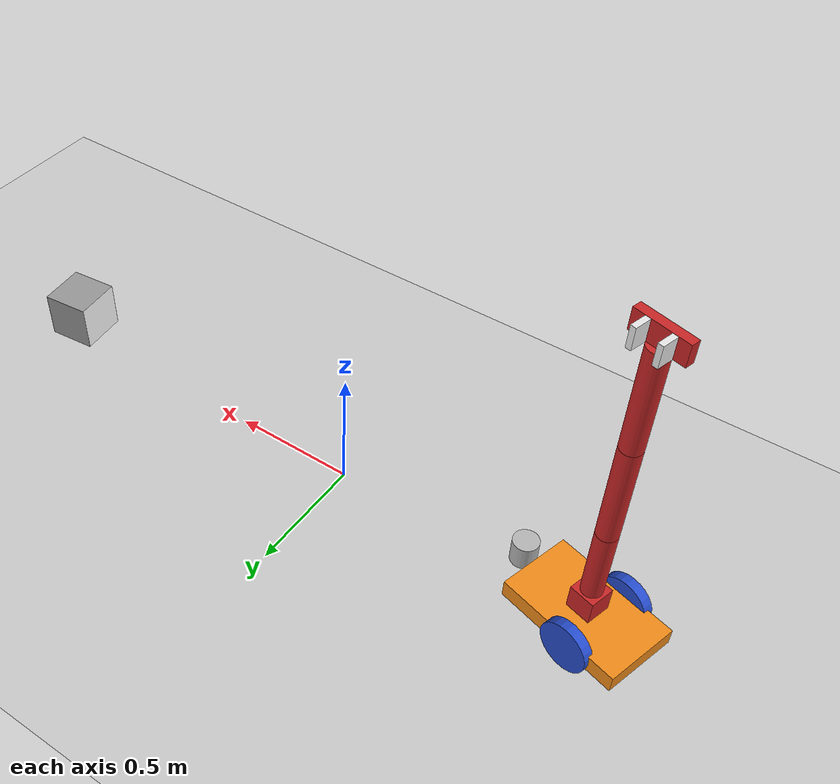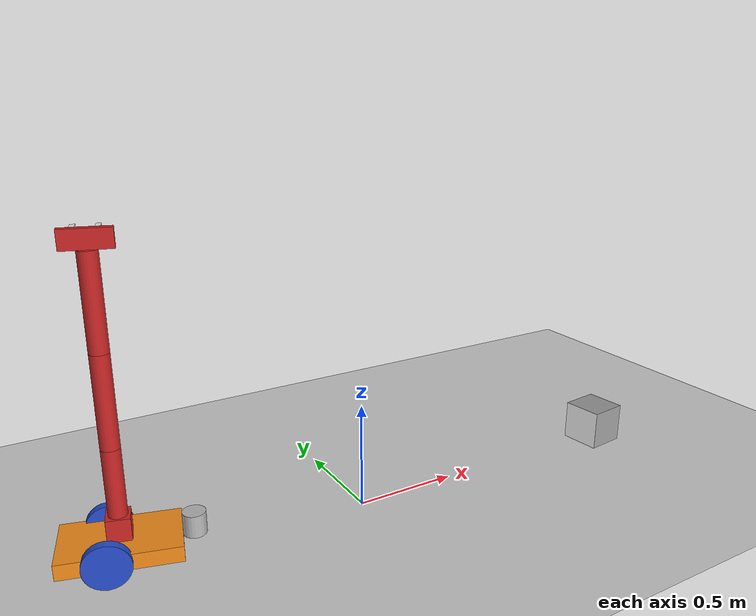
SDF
<sdf version="1.7">
 <world name="default">
  <model name="ground_plane">
   <static>1</static>
   <link name="link">
    <collision name="collision">
     <geometry><plane><normal>0 0 1</normal><size>100 100</size></plane></geometry>
     <surface>
      <contact><collide_bitmask>65535</collide_bitmask></contact>
      <friction><ode><mu>100</mu><mu2>50</mu2></ode></friction>
     </surface>
    </collision>
    <visual name="visual">
     <cast_shadows>0</cast_shadows>
     <geometry><plane><normal>0 0 1</normal><size>100 100</size></plane></geometry>
     <material>
      <script><uri>file://media/materials/scripts/gazebo.material</uri><name>Gazebo/Grey</name></script>
     </material>
    </visual>
   </link>
  </model>
  <model name="robot">
   <link name="base_link">
    <inertial>
     <pose>0.049181 0 0.091561 0 -0 0</pose>
     <mass>6.10001</mass>
     <inertia>
      <ixx>0.0431668</ixx>
      <ixy>0</ixy>
      <ixz>0.0124628</ixz>
      <iyy>0.18508</iyy>
      <iyz>0</iyz>
      <izz>0.182747</izz>
     </inertia>
    </inertial>
    <collision name="base_link_fixed_joint_lump__collision_chassis_collision">
     <geometry><box><size>0.5 0.3 0.07</size></box></geometry>
    </collision>
    <collision name="base_link_fixed_joint_lump__caster_front_collision_collision_1">
     <pose>0.35 0 -0.05 0 -0 0</pose>
     <geometry><sphere><radius>0.05</radius></sphere></geometry>
    </collision>
    <collision name="base_link_fixed_joint_lump__arm_base_link_collision_2">
     <pose>0 0 0.085 0 -0 0</pose>
     <geometry><box><size>0.1 0.1 0.1</size></box></geometry>
    </collision>
    <collision name="base_link_fixed_joint_lump__camera_link_collision_3">
     <pose>0.28 0 3 0 -0 0</pose>
     <geometry><box><size>0.0001 0.0001 1e-05</size></box></geometry>
    </collision>
    <collision name="base_link_fixed_joint_lump__laser_collision_4">
     <pose>0.3 0 0.05 0 -0 0</pose>
     <geometry><cylinder><length>0.1</length><radius>0.05</radius></cylinder></geometry>
    </collision>
    <visual name="base_link_visual">
     <geometry><box><size>0.5 0.3 0.07</size></box></geometry>
     <material>
      <script><name>Gazebo/Orange</name><uri>file://media/materials/scripts/gazebo.material</uri></script>
     </material>
    </visual>
    <visual name="base_link_fixed_joint_lump__caster_front_visual_visual_1">
     <pose>0.2 0 -0.05 0 -0 0</pose>
     <geometry><sphere><radius>0.05</radius></sphere></geometry>
    </visual>
    <visual name="base_link_fixed_joint_lump__arm_base_link_visual_2">
     <pose>0 0 0.085 0 -0 0</pose>
     <geometry><box><size>0.1 0.1 0.1</size></box></geometry>
     <material>
      <script><name>Gazebo/Red</name><uri>file://media/materials/scripts/gazebo.material</uri></script>
     </material>
    </visual>
    <visual name="base_link_fixed_joint_lump__camera_link_visual_3">
     <pose>0.28 0 2.025 0 -0 0</pose>
     <geometry><box><size>5e-06 5e-05 0.0005</size></box></geometry>
    </visual>
    <visual name="base_link_fixed_joint_lump__laser_visual_4">
     <pose>0.3 0 0.05 0 -0 0</pose>
     <geometry><cylinder><length>0.1</length><radius>0.05</radius></cylinder></geometry>
    </visual>
    <sensor name="rgbd" type="depth">
     <update_rate>20</update_rate>
     <camera>
      <horizontal_fov>1.0472</horizontal_fov>
      <image><width>640</width><height>480</height><format>R8G8B8</format></image>
      <clip><near>0.05</near><far>3</far></clip>
     </camera>
     <plugin name="camera_controller" filename="libgazebo_ros_openni_kinect.so">
      <baseline>0.2</baseline>
      <alwaysOn>1</alwaysOn>
      <updateRate>1.0</updateRate>
      <cameraName>camera_ir</cameraName>
      <imageTopicName>/camera/color/image_raw</imageTopicName>
      <cameraInfoTopicName>/camera/color/camera_info</cameraInfoTopicName>
      <depthImageTopicName>/camera/depth/image_raw</depthImageTopicName>
      <depthImageInfoTopicName>/camera/depth/camera_info</depthImageInfoTopicName>
      <pointCloudTopicName>/camera/depth/points</pointCloudTopicName>
      <frameName>cameradepth_link</frameName>
      <pointCloudCutoff>0.5</pointCloudCutoff>
      <pointCloudCutoffMax>3.0</pointCloudCutoffMax>
      <distortionK1>0.00000001</distortionK1>
      <distortionK2>0.00000001</distortionK2>
      <distortionK3>0.00000001</distortionK3>
      <distortionT1>0.00000001</distortionT1>
      <distortionT2>0.00000001</distortionT2>
      <CxPrime>0</CxPrime>
      <Cx>0</Cx>
      <Cy>0</Cy>
      <focalLength>0</focalLength>
      <hackBaseline>0</hackBaseline>
      <robotNamespace>/</robotNamespace>
     </plugin>
     <pose>0.28 0 2 0 -0 0</pose>
    </sensor>
    <sensor name="head_hokuyo_sensor" type="ray">
     <visualize>0</visualize>
     <update_rate>20</update_rate>
     <ray>
      <scan>
       <horizontal>
        <samples>720</samples>
        <resolution>1</resolution>
        <min_angle>-1.5708</min_angle>
        <max_angle>1.5708</max_angle>
       </horizontal>
       <vertical><samples>1</samples><min_angle>0</min_angle><max_angle>0</max_angle></vertical>
      </scan>
      <range><min>0.1</min><max>10</max><resolution>0.01</resolution></range>
      <noise><type>gaussian</type><mean>0</mean><stddev>0.01</stddev></noise>
     </ray>
     <plugin name="gazebo_ros_head_hokuyo_controller" filename="libgazebo_ros_laser.so">
      <topicName>scan</topicName>
      <frameName>laser</frameName>
      <robotNamespace>/</robotNamespace>
     </plugin>
     <pose>0.3 0 0.05 0 -0 0</pose>
    </sensor>
   </link>
   <joint name="arm_joint_01" type="revolute">
    <pose relative_to="base_link">0 0 0.235 0 -0 0</pose>
    <parent>base_link</parent>
    <child>arm_link_01</child>
    <axis>
     <xyz>0 0 1</xyz>
     <limit><lower>-3.14</lower><upper>3.14</upper><effort>1000</effort><velocity>0.2</velocity></limit>
     <dynamics><spring_reference>0</spring_reference><spring_stiffness>0</spring_stiffness></dynamics>
    </axis>
   </joint>
   <link name="arm_link_01">
    <pose relative_to="arm_joint_01">0 0 0 0 -0 0</pose>
    <inertial>
     <mass>0.025</mass>
     <inertia>
      <ixx>1.0279e-05</ixx>
      <ixy>0</ixy>
      <ixz>0</ixz>
      <iyy>1.0279e-05</iyy>
      <iyz>0</iyz>
      <izz>7.225e-06</izz>
     </inertia>
    </inertial>
    <collision name="arm_link_01_collision">
     <geometry><cylinder><length>0.4</length><radius>0.04</radius></cylinder></geometry>
    </collision>
    <visual name="arm_link_01_visual">
     <geometry><cylinder><length>0.4</length><radius>0.04</radius></cylinder></geometry>
     <material>
      <script><name>Gazebo/Red</name><uri>file://media/materials/scripts/gazebo.material</uri></script>
     </material>
    </visual>
   </link>
   <joint name="arm_joint_02" type="revolute">
    <pose relative_to="arm_link_01">0 0 0.2 0 -0 0</pose>
    <parent>arm_link_01</parent>
    <child>arm_link_02</child>
    <axis>
     <xyz>1 0 0</xyz>
     <limit><lower>-1.8</lower><upper>1.8</upper><effort>1000</effort><velocity>0.2</velocity></limit>
     <dynamics><spring_reference>0</spring_reference><spring_stiffness>0</spring_stiffness></dynamics>
    </axis>
    <physics>
     <provide_feedback>1</provide_feedback>
     <ode><limit><cfm>0</cfm><erp>0.2</erp></limit><provide_feedback>1</provide_feedback></ode>
    </physics>
   </joint>
   <link name="arm_link_02">
    <pose relative_to="arm_joint_02">0 0 0 0 -0 0</pose>
    <inertial>
     <mass>0.015</mass>
     <inertia>
      <ixx>1.0279e-05</ixx>
      <ixy>0</ixy>
      <ixz>0</ixz>
      <iyy>1.0279e-05</iyy>
      <iyz>0</iyz>
      <izz>7.225e-06</izz>
     </inertia>
    </inertial>
    <collision name="arm_link_02_collision">
     <pose>0 0 0.2 0 -0 0</pose>
     <geometry><cylinder><length>0.4</length><radius>0.04</radius></cylinder></geometry>
    </collision>
    <visual name="arm_link_02_visual">
     <pose>0 0 0.2 0 -0 0</pose>
     <geometry><cylinder><length>0.4</length><radius>0.04</radius></cylinder></geometry>
     <material>
      <script><name>Gazebo/Red</name><uri>file://media/materials/scripts/gazebo.material</uri></script>
     </material>
    </visual>
   </link>
   <joint name="arm_joint_03" type="revolute">
    <pose relative_to="arm_link_02">0 0 0.4 0 -0 0</pose>
    <parent>arm_link_02</parent>
    <child>arm_link_03</child>
    <axis>
     <xyz>1 0 0</xyz>
     <limit><lower>-1.8</lower><upper>1.8</upper><effort>1000</effort><velocity>0.2</velocity></limit>
     <dynamics><spring_reference>0</spring_reference><spring_stiffness>0</spring_stiffness></dynamics>
    </axis>
   </joint>
   <link name="arm_link_03">
    <pose relative_to="arm_joint_03">0 0 0 0 -0 0</pose>
    <inertial>
     <mass>0.015</mass>
     <inertia>
      <ixx>1.0279e-05</ixx>
      <ixy>0</ixy>
      <ixz>0</ixz>
      <iyy>1.0279e-05</iyy>
      <iyz>0</iyz>
      <izz>7.225e-06</izz>
     </inertia>
    </inertial>
    <collision name="arm_link_03_collision">
     <pose>0 0 0.2 0 -0 0</pose>
     <geometry><cylinder><length>0.4</length><radius>0.04</radius></cylinder></geometry>
    </collision>
    <visual name="arm_link_03_visual">
     <pose>0 0 0.2 0 -0 0</pose>
     <geometry><cylinder><length>0.4</length><radius>0.04</radius></cylinder></geometry>
     <material>
      <script><name>Gazebo/Red</name><uri>file://media/materials/scripts/gazebo.material</uri></script>
     </material>
    </visual>
   </link>
   <joint name="arm_joint_04" type="revolute">
    <pose relative_to="arm_link_03">0 0 0.4 0 -0 0</pose>
    <parent>arm_link_03</parent>
    <child>cluedo_link</child>
    <axis>
     <xyz>1 0 0</xyz>
     <limit><lower>-1.8</lower><upper>1.8</upper><effort>1000</effort><velocity>0.5</velocity></limit>
     <dynamics><spring_reference>0</spring_reference><spring_stiffness>0</spring_stiffness></dynamics>
    </axis>
   </joint>
   <link name="cluedo_link">
    <pose relative_to="arm_joint_04">0 0 0 0 -0 0</pose>
    <inertial>
     <mass>0.015</mass>
     <inertia>
      <ixx>1.0279e-05</ixx>
      <ixy>0</ixy>
      <ixz>0</ixz>
      <iyy>1.0279e-05</iyy>
      <iyz>0</iyz>
      <izz>7.225e-06</izz>
     </inertia>
    </inertial>
    <collision name="cluedo_link_collision">
     <pose>0 0 0.04 0 -0 1.57</pose>
     <geometry><box><size>0.034 0.2 0.08</size></box></geometry>
    </collision>
    <visual name="cluedo_link_visual">
     <pose>0 0 0.04 0 -0 1.57</pose>
     <geometry><box><size>0.034 0.2 0.08</size></box></geometry>
     <material>
      <script><name>Gazebo/Red</name><uri>file://media/materials/scripts/gazebo.material</uri></script>
     </material>
    </visual>
   </link>
   <joint name="left_grip_joint" type="prismatic">
    <pose relative_to="cluedo_link">-0.015 0 0 0 -0 0</pose>
    <parent>cluedo_link</parent>
    <child>left_grip_link</child>
    <axis>
     <xyz>1 0 0</xyz>
     <limit><lower>-0.035</lower><upper>0.04</upper><effort>1000</effort><velocity>6.5</velocity></limit>
     <dynamics><spring_reference>0</spring_reference><spring_stiffness>0</spring_stiffness></dynamics>
    </axis>
   </joint>
   <link name="left_grip_link">
    <pose relative_to="left_grip_joint">0 0 0 0 -0 0</pose>
    <inertial>
     <mass>0.01</mass>
     <inertia>
      <ixx>1.0279e-05</ixx>
      <ixy>0</ixy>
      <ixz>0</ixz>
      <iyy>1.0279e-05</iyy>
      <iyz>0</iyz>
      <izz>7.225e-06</izz>
     </inertia>
    </inertial>
    <collision name="left_grip_link_collision">
     <pose>0.06 0.048 0.04 3.14159 9.3e-05 1.57159</pose>
     <geometry><box><size>0.06 0.02 0.08</size></box></geometry>
    </collision>
    <visual name="left_grip_link_visual">
     <pose>0.06 0.048 0.04 3.14159 9.3e-05 1.57159</pose>
     <geometry><box><size>0.06 0.02 0.08</size></box></geometry>
     <material>
      <script><name>Gazebo/White</name><uri>file://media/materials/scripts/gazebo.material</uri></script>
     </material>
    </visual>
   </link>
   <joint name="right_grip_joint" type="prismatic">
    <pose relative_to="cluedo_link">-0.015 0 0 0 -0 0</pose>
    <parent>cluedo_link</parent>
    <child>right_grip_link</child>
    <axis>
     <xyz>1 0 0</xyz>
     <limit><lower>-0.04</lower><upper>0.035</upper><effort>1000</effort><velocity>6.5</velocity></limit>
     <dynamics><spring_reference>0</spring_reference><spring_stiffness>0</spring_stiffness></dynamics>
    </axis>
   </joint>
   <link name="right_grip_link">
    <pose relative_to="right_grip_joint">0 0 0 0 -0 0</pose>
    <inertial>
     <mass>0.01</mass>
     <inertia>
      <ixx>1.0279e-05</ixx>
      <ixy>0</ixy>
      <ixz>0</ixz>
      <iyy>1.0279e-05</iyy>
      <iyz>0</iyz>
      <izz>7.225e-06</izz>
     </inertia>
    </inertial>
    <collision name="right_grip_link_collision">
     <pose>-0.032 0.048 0.04 3.14159 9.3e-05 1.57159</pose>
     <geometry><box><size>0.06 0.02 0.08</size></box></geometry>
    </collision>
    <visual name="right_grip_link_visual">
     <pose>-0.032 0.048 0.04 3.14159 9.3e-05 1.57159</pose>
     <geometry><box><size>0.06 0.02 0.08</size></box></geometry>
     <material>
      <script><name>Gazebo/White</name><uri>file://media/materials/scripts/gazebo.material</uri></script>
     </material>
    </visual>
   </link>
   <joint name="joint_left_wheel" type="revolute">
    <pose relative_to="base_link">-0.05 -0.15 0 0 -0 0</pose>
    <parent>base_link</parent>
    <child>link_left_wheel</child>
    <axis>
     <xyz>0 1 0</xyz>
     <limit><lower>-1e+16</lower><upper>1e+16</upper></limit>
     <dynamics><spring_reference>0</spring_reference><spring_stiffness>0</spring_stiffness></dynamics>
    </axis>
   </joint>
   <link name="link_left_wheel">
    <pose relative_to="joint_left_wheel">0 0 0 0 -0 0</pose>
    <inertial>
     <pose>0 0 0 -0 1.5707 1.5707</pose>
     <mass>0.2</mass>
     <inertia>
      <ixx>0.000526667</ixx>
      <ixy>0</ixy>
      <ixz>0</ixz>
      <iyy>0.000526667</iyy>
      <iyz>0</iyz>
      <izz>0.001</izz>
     </inertia>
    </inertial>
    <collision name="link_left_wheel_fixed_joint_lump__link_right_wheel_collision_collision">
     <pose>0 0 0 1.57089 1.57079 -3.14159</pose>
     <geometry><cylinder><length>0.04</length><radius>0.1</radius></cylinder></geometry>
    </collision>
    <visual name="link_left_wheel_visual_visual">
     <pose>0 0 0 1.57089 1.57079 -3.14159</pose>
     <geometry><cylinder><length>0.04</length><radius>0.1</radius></cylinder></geometry>
     <material>
      <script><name>Gazebo/Blue</name><uri>file://media/materials/scripts/gazebo.material</uri></script>
     </material>
    </visual>
   </link>
   <joint name="joint_right_wheel" type="revolute">
    <pose relative_to="base_link">-0.05 0.15 0 0 -0 0</pose>
    <parent>base_link</parent>
    <child>link_right_wheel</child>
    <axis>
     <xyz>0 1 0</xyz>
     <limit><lower>-1e+16</lower><upper>1e+16</upper></limit>
     <dynamics><spring_reference>0</spring_reference><spring_stiffness>0</spring_stiffness></dynamics>
    </axis>
   </joint>
   <link name="link_right_wheel">
    <pose relative_to="joint_right_wheel">0 0 0 0 -0 0</pose>
    <inertial>
     <pose>0 0 0 -0 1.5707 1.5707</pose>
     <mass>0.2</mass>
     <inertia>
      <ixx>0.000526667</ixx>
      <ixy>0</ixy>
      <ixz>0</ixz>
      <iyy>0.000526667</iyy>
      <iyz>0</iyz>
      <izz>0.001</izz>
     </inertia>
    </inertial>
    <collision name="link_right_wheel_collision_collision">
     <pose>0 0 0 1.57089 1.57079 -3.14159</pose>
     <geometry><cylinder><length>0.04</length><radius>0.1</radius></cylinder></geometry>
    </collision>
    <visual name="link_right_wheel_visual_visual">
     <pose>0 0 0 1.57089 1.57079 -3.14159</pose>
     <geometry><cylinder><length>0.04</length><radius>0.1</radius></cylinder></geometry>
     <material>
      <script><name>Gazebo/Blue</name><uri>file://media/materials/scripts/gazebo.material</uri></script>
     </material>
    </visual>
   </link>
   <plugin name="ft_sensor" filename="libgazebo_ros_ft_sensor.so">
    <updateRate>100.0</updateRate>
    <topicName>ft_sensor_topic</topicName>
    <jointName>arm_joint_02</jointName>
    <robotNamespace>/</robotNamespace>
   </plugin>
   <plugin name="differential_drive_controller" filename="libgazebo_ros_diff_drive.so">
    <legacyMode>1</legacyMode>
    <alwaysOn>1</alwaysOn>
    <updateRate>20</updateRate>
    <leftJoint>joint_right_wheel</leftJoint>
    <rightJoint>joint_left_wheel</rightJoint>
    <wheelSeparation>0.3</wheelSeparation>
    <wheelDiameter>0.2</wheelDiameter>
    <torque>0.1</torque>
    <commandTopic>cmd_vel</commandTopic>
    <odometryTopic>odom</odometryTopic>
    <odometryFrame>odom</odometryFrame>
    <robotBaseFrame>base_link</robotBaseFrame>
    <rosDebugLevel>na</rosDebugLevel>
    <publishWheelTF>1</publishWheelTF>
    <publishWheelJointState>1</publishWheelJointState>
    <wheelAcceleration>0</wheelAcceleration>
    <wheelTorque>5</wheelTorque>
    <odometrySource>1</odometrySource>
    <publishTf>1</publishTf>
    <robotNamespace>/</robotNamespace>
   </plugin>
   <plugin name="gazebo_ros_control" filename="libgazebo_ros_control.so">
    <robotSimType>gazebo_ros_control/DefaultRobotHWSim</robotSimType>
    <legacyModeNS>1</legacyModeNS>
    <robotNamespace>/</robotNamespace>
   </plugin>
   <static>0</static>
   <plugin name="gazebo_ros_control" filename="libgazebo_ros_control.so">
    <robotNamespace>/</robotNamespace>
   </plugin>
   <pose>-1.09169 0.097202 0.1 -8e-06 -0 -0.266304</pose>
  </model>
  <model name="marker11_box_0">
   <link name="marker">
    <inertial>
     <mass>0.1</mass>
     <inertia><ixx>0</ixx><ixy>0</ixy><ixz>0</ixz><iyy>0</iyy><iyz>0</iyz><izz>0</izz></inertia>
    </inertial>
    <self_collide>1</self_collide>
    <pose>-0.76428 -0.101106 0.120004 -0.015494 1.56996 -0.015507</pose>
    <visual name="visual">
     <geometry><box><size>0.2 0.2 0.001</size></box></geometry>
     <material>
      <script>
       <uri>model://marker11/material/scripts</uri>
       <uri>model://marker11/material/textures</uri>
       <name>Aruco/marker11</name>
      </script>
      <shader type="pixel"><normal_map>__default__</normal_map></shader>
      <emissive>0 0 0 1</emissive>
      <ambient>1 1 1 1</ambient>
      <diffuse>1 1 1 1</diffuse>
      <specular>0 0 0 1</specular>
     </material>
    </visual>
    <collision name="collision">
     <geometry><box><size>0.2 0.2 0.02</size></box></geometry>
     <surface>
      <friction>
       <ode><mu>1</mu><mu2>1</mu2><fdir1>0 0 0</fdir1><slip1>0</slip1><slip2>0</slip2></ode>
       <torsional>
        <coefficient>1</coefficient>
        <patch_radius>0</patch_radius>
        <surface_radius>0</surface_radius>
        <use_patch_radius>1</use_patch_radius>
        <ode><slip>0</slip></ode>
       </torsional>
      </friction>
      <bounce><restitution_coefficient>0</restitution_coefficient><threshold>1e+06</threshold></bounce>
      <contact>
       <collide_without_contact>0</collide_without_contact>
       <collide_without_contact_bitmask>1</collide_without_contact_bitmask>
       <collide_bitmask>1</collide_bitmask>
       <ode>
        <soft_cfm>0</soft_cfm>
        <soft_erp>0.2</soft_erp>
        <kp>1e+13</kp>
        <kd>1</kd>
        <max_vel>0.01</max_vel>
        <min_depth>0</min_depth>
       </ode>
       <bullet>
        <split_impulse>1</split_impulse>
        <split_impulse_penetration_threshold>-0.01</split_impulse_penetration_threshold>
        <soft_cfm>0</soft_cfm>
        <soft_erp>0.2</soft_erp>
        <kp>1e+13</kp>
        <kd>1</kd>
       </bullet>
      </contact>
     </surface>
    </collision>
   </link>
   <link name="link_1">
    <inertial>
     <mass>1</mass>
     <inertia>
      <ixx>0.166667</ixx>
      <ixy>0</ixy>
      <ixz>0</ixz>
      <iyy>0.166667</iyy>
      <iyz>0</iyz>
      <izz>0.166667</izz>
     </inertia>
    </inertial>
    <pose>-0.86428 -0.101106 0.12 -1.3e-05 -4.2e-05 0</pose>
    <visual name="visual">
     <geometry><box><size>0.2 0.2 0.2</size></box></geometry>
     <material>
      <lighting>1</lighting>
      <script><uri>file://media/materials/scripts/gazebo.material</uri><name>Gazebo/Grey</name></script>
      <shader type="pixel"><normal_map>__default__</normal_map></shader>
      <emissive>0 0 0 1</emissive>
      <ambient>0.3 0.3 0.3 1</ambient>
      <diffuse>0.7 0.7 0.7 1</diffuse>
      <specular>0.01 0.01 0.01 1</specular>
     </material>
    </visual>
    <collision name="collision">
     <geometry><box><size>0.2 0.2 0.2</size></box></geometry>
     <surface>
      <friction>
       <ode><mu>1</mu><mu2>1</mu2><fdir1>0 0 0</fdir1><slip1>0</slip1><slip2>0</slip2></ode>
       <torsional>
        <coefficient>1</coefficient>
        <patch_radius>0</patch_radius>
        <surface_radius>0</surface_radius>
        <use_patch_radius>1</use_patch_radius>
        <ode><slip>0</slip></ode>
       </torsional>
      </friction>
      <bounce><restitution_coefficient>0</restitution_coefficient><threshold>1e+06</threshold></bounce>
      <contact>
       <collide_without_contact>0</collide_without_contact>
       <collide_without_contact_bitmask>1</collide_without_contact_bitmask>
       <collide_bitmask>1</collide_bitmask>
       <ode>
        <soft_cfm>0</soft_cfm>
        <soft_erp>0.2</soft_erp>
        <kp>1e+13</kp>
        <kd>1</kd>
        <max_vel>0.01</max_vel>
        <min_depth>0</min_depth>
       </ode>
       <bullet>
        <split_impulse>1</split_impulse>
        <split_impulse_penetration_threshold>-0.01</split_impulse_penetration_threshold>
        <soft_cfm>0</soft_cfm>
        <soft_erp>0.2</soft_erp>
        <kp>1e+13</kp>
        <kd>1</kd>
       </bullet>
      </contact>
     </surface>
    </collision>
   </link>
   <joint name="link_1_JOINT_3" type="fixed">
    <parent>link_1</parent>
    <child>marker</child>
    <physics>
     <ode><limit><cfm>0</cfm><erp>0.2</erp></limit><suspension><cfm>0</cfm><erp>0.2</erp></suspension></ode>
    </physics>
   </joint>
   <static>0</static>
   <pose>0.604205 -0.232219 -0.020017 1.8e-05 1.8e-05 -3.03859</pose>
  </model>
 </world>
</sdf>
